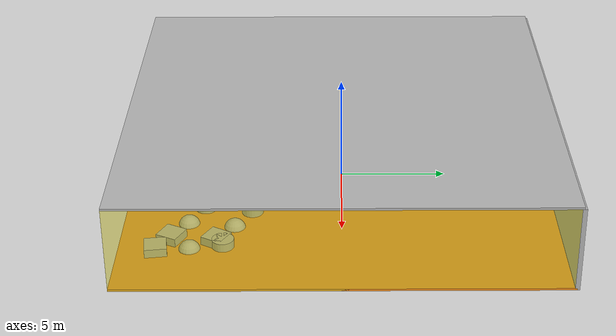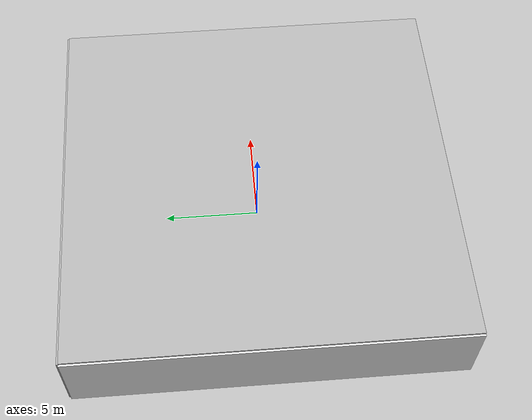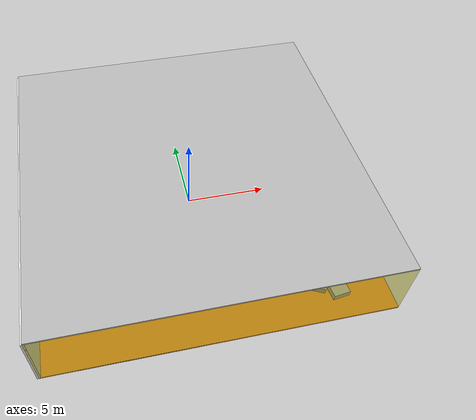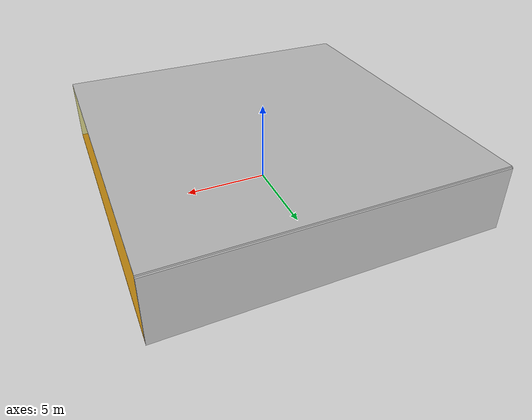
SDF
<sdf version="1.4">
 <world name="default">
  <physics type="ode">
   <max_step_size>0.001</max_step_size>
   <real_time_factor>1</real_time_factor>
   <real_time_update_rate>1000</real_time_update_rate>
   <gravity>0 0 -9.8</gravity>
  </physics>
  <scene><ambient>0.4 0.4 0.4 1</ambient><background>0.7 0.7 0.7 1</background><shadows>1</shadows></scene>
  <model name="Surrounding">
   <static>1</static>
   <link name="Ceiling">
    <collision name="Ceiling_Collision"><geometry><box><size>20 20 0.1</size></box></geometry></collision>
    <visual name="Ceiling_Visual">
     <geometry><box><size>20 20 0.1</size></box></geometry>
     <material>
      <script><uri>file://media/materials/scripts/gazebo.material</uri><name>Gazebo/PioneerBody</name></script>
     </material>
    </visual>
    <pose>0 0 4.05 0 0 0</pose>
   </link>
   <link name="Wall_South">
    <collision name="Wall_South_Collision">
     <geometry><box><size>20 0 4</size></box></geometry>
     <pose>0 0 2 0 -0 0</pose>
    </collision>
    <visual name="Wall_South_Visual">
     <pose>0 0 2 0 -0 0</pose>
     <geometry><box><size>20 0 4</size></box></geometry>
     <material>
      <script>
       <uri>file://media/materials/scripts/gazebo.material</uri>
       <name>Gazebo/YellowTransparent</name>
      </script>
     </material>
    </visual>
    <velocity_decay><linear>0</linear><angular>0</angular></velocity_decay>
    <pose>0 -10 0 0 -0 0</pose>
   </link>
   <link name="Wall_East">
    <collision name="Wall_21_Collision">
     <geometry><box><size>20 0 4</size></box></geometry>
     <pose>0 0 2 0 -0 0</pose>
    </collision>
    <visual name="Wall_21_Visual">
     <pose>0 0 2 0 -0 0</pose>
     <geometry><box><size>20 0 4</size></box></geometry>
     <material>
      <script>
       <uri>file://media/materials/scripts/gazebo.material</uri>
       <name>Gazebo/YellowTransparent</name>
      </script>
     </material>
    </visual>
    <velocity_decay><linear>0</linear><angular>0</angular></velocity_decay>
    <pose>10 0 0 0 -0 1.5708</pose>
   </link>
   <link name="Wall_North">
    <collision name="Wall_22_Collision">
     <geometry><box><size>20 0.2 4</size></box></geometry>
     <pose>0 0 2 0 -0 0</pose>
    </collision>
    <visual name="Wall_22_Visual">
     <pose>0 0 2 0 -0 0</pose>
     <geometry><box><size>20 0.2 4</size></box></geometry>
     <material>
      <script><uri>file://media/materials/scripts/gazebo.material</uri><name>Gazebo/Pioneer2Body</name></script>
     </material>
    </visual>
    <velocity_decay><linear>0</linear><angular>0</angular></velocity_decay>
    <pose>0 10 0 0 -0 0</pose>
   </link>
   <link name="Wall_West">
    <collision name="Wall_23_Collision">
     <geometry><box><size>20 0.2 4</size></box></geometry>
     <pose>0 0 2 0 -0 0</pose>
    </collision>
    <visual name="Wall_23_Visual">
     <pose>0 0 2 0 -0 0</pose>
     <geometry><box><size>20 0.2 4</size></box></geometry>
     <material>
      <script><uri>file://media/materials/scripts/gazebo.material</uri><name>Gazebo/WhiteGlow</name></script>
     </material>
    </visual>
    <velocity_decay><linear>0</linear><angular>0</angular></velocity_decay>
    <pose>-10 0 0 0 0 -1.5708</pose>
   </link>
   <link name="Ground_link">
    <collision name="collision">
     <pose>0 0 .05 0 -0 0</pose>
     <geometry><box><size>20 20 0.1</size></box></geometry>
    </collision>
    <visual name="visual">
     <pose>0 0 .05 0 -0 0</pose>
     <geometry><box><size>20 20 0.1</size></box></geometry>
     <material>
      <script><uri>file://media/materials/scripts/gazebo.material</uri><name>Gazebo/Orange</name></script>
     </material>
    </visual>
   </link>
   <static>1</static>
  </model>
  <spherical_coordinates>
   <surface_model>EARTH_WGS84</surface_model>
   <latitude_deg>0</latitude_deg>
   <longitude_deg>0</longitude_deg>
   <elevation>0</elevation>
   <heading_deg>0</heading_deg>
  </spherical_coordinates>
  <light name="lightball_0" type="diffuse">
   <diffuse>0.8 0.8 0.8 1</diffuse>
   <specular>0.2 0.2 0.2 1</specular>
   <attenuation>
    <range>100</range>
    <constant>0.7</constant>
    <linear>0.01</linear>
    <quadratic>0.001</quadratic>
   </attenuation>
   <direction>-0.5 0.1 -0.9</direction>
   <pose>8.05352303151 2.71248816753 2.50353630944 0 0 0</pose>
  </light>
  <light name="lightball_1" type="diffuse">
   <diffuse>0.8 0.8 0.8 1</diffuse>
   <specular>0.2 0.2 0.2 1</specular>
   <attenuation>
    <range>100</range>
    <constant>0.7</constant>
    <linear>0.01</linear>
    <quadratic>0.001</quadratic>
   </attenuation>
   <direction>-0.5 0.1 -0.9</direction>
   <pose>7.19406660844 5.80635217028 2.46823918439 0 0 0</pose>
  </light>
  <light name="lightball_2" type="diffuse">
   <diffuse>0.8 0.8 0.8 1</diffuse>
   <specular>0.2 0.2 0.2 1</specular>
   <attenuation>
    <range>100</range>
    <constant>0.7</constant>
    <linear>0.01</linear>
    <quadratic>0.001</quadratic>
   </attenuation>
   <direction>-0.5 0.1 -0.9</direction>
   <pose>0.147081659708 -0.391447342016 3.1359336897 0 0 0</pose>
  </light>
  <light name="lightball_3" type="diffuse">
   <diffuse>0.8 0.8 0.8 1</diffuse>
   <specular>0.2 0.2 0.2 1</specular>
   <attenuation>
    <range>100</range>
    <constant>0.7</constant>
    <linear>0.01</linear>
    <quadratic>0.001</quadratic>
   </attenuation>
   <direction>-0.5 0.1 -0.9</direction>
   <pose>-3.61637083932 -7.64150423398 1.58405798145 0 0 0</pose>
  </light>
  <light name="lightball_4" type="diffuse">
   <diffuse>0.8 0.8 0.8 1</diffuse>
   <specular>0.2 0.2 0.2 1</specular>
   <attenuation>
    <range>100</range>
    <constant>0.7</constant>
    <linear>0.01</linear>
    <quadratic>0.001</quadratic>
   </attenuation>
   <direction>-0.5 0.1 -0.9</direction>
   <pose>8.92122555428 8.76841447102 2.46904164731 0 0 0</pose>
  </light>
  <light name="lightball_5" type="diffuse">
   <diffuse>0.8 0.8 0.8 1</diffuse>
   <specular>0.2 0.2 0.2 1</specular>
   <attenuation>
    <range>100</range>
    <constant>0.7</constant>
    <linear>0.01</linear>
    <quadratic>0.001</quadratic>
   </attenuation>
   <direction>-0.5 0.1 -0.9</direction>
   <pose>4.42214930454 -8.01551369479 1.5081125976 0 0 0</pose>
  </light>
  <light name="lightball_6" type="diffuse">
   <diffuse>0.8 0.8 0.8 1</diffuse>
   <specular>0.2 0.2 0.2 1</specular>
   <attenuation>
    <range>100</range>
    <constant>0.7</constant>
    <linear>0.01</linear>
    <quadratic>0.001</quadratic>
   </attenuation>
   <direction>-0.5 0.1 -0.9</direction>
   <pose>-5.27932295883 -2.06885519431 0.644130831188 0 0 0</pose>
  </light>
  <include>
   <uri>model://textured_shapes</uri>
   <pose>4.69158018197 -6.99645309968 0 0 0 1.10302825833</pose>
  </include>
  <include>
   <uri>model://textured_shapes</uri>
   <pose>4.9900873092 -4.89153708028 0 0 0 1.04648053899</pose>
  </include>
  <include>
   <uri>model://textured_shapes</uri>
   <pose>6.81662894706 -6.80549194747 0 0 0 0.130322206412</pose>
  </include>
 </world>
</sdf>

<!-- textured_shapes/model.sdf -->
<sdf version="1.6">
  <model name="textured_shapes">
    <pose>0 0 0.5 0 0 0</pose>
    <link name="box">
      <pose>0 -1.5 0 0 0 0</pose>
      <collision name="collision">
        <geometry>
          <box>
            <size>1 1 1</size>
          </box>
        </geometry>
      </collision>
      <visual name="visual">
        <geometry>
          <box>
            <size>1 1 1</size>
          </box>
        </geometry>
        <material>
          <script>
            <uri>model://../model_source/models/textured_shapes/materials/scripts</uri>
            <uri>model://../model_source/models/textured_shapes/materials/textures</uri>
            <name>TexturedShape/Squares</name>
          </script>
        </material>
      </visual>
    </link>
    <link name="sphere">
      <collision name="collision">
        <geometry>
          <sphere>
            <radius>0.5</radius>
          </sphere>
        </geometry>
      </collision>
      <visual name="visual">
        <geometry>
          <sphere>
            <radius>0.5</radius>
          </sphere>
        </geometry>
        <material>
          <script>
            <uri>model://../model_source/models/textured_shapes/materials/scripts</uri>
            <uri>model://../model_source/models/textured_shapes/materials/textures</uri>
            <name>TexturedShape/Squares</name>
          </script>
        </material>
      </visual>
    </link>
    <link name="cylinder">
      <pose>0 1.5 0 0 0 0</pose>
      <collision name="collision">
        <geometry>
          <cylinder>
            <radius>0.5</radius>
            <length>1</length>
          </cylinder>
        </geometry>
      </collision>
      <visual name="visual">
        <geometry>
          <cylinder>
            <radius>0.5</radius>
            <length>1</length>
          </cylinder>
        </geometry>
        <material>
          <script>
            <uri>model://../model_source/models/textured_shapes/materials/scripts</uri>
            <uri>model://../model_source/models/textured_shapes/materials/textures</uri>
            <name>TexturedShape/Squares</name>
          </script>
        </material>
      </visual>
    </link>
  </model>
</sdf>
